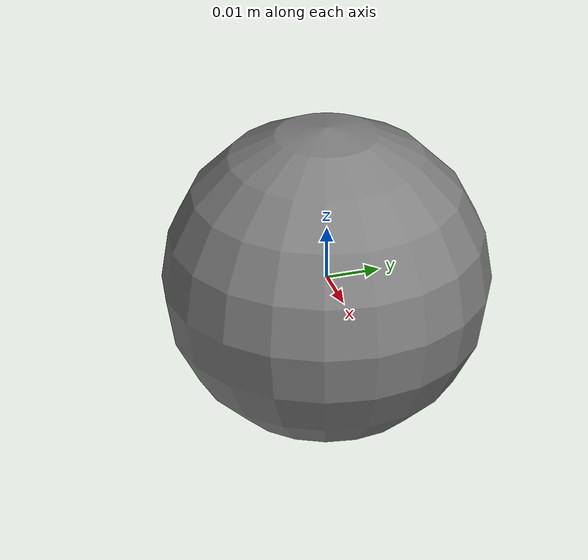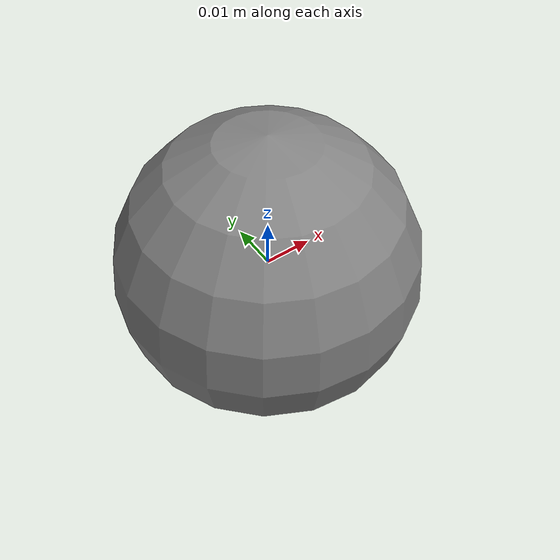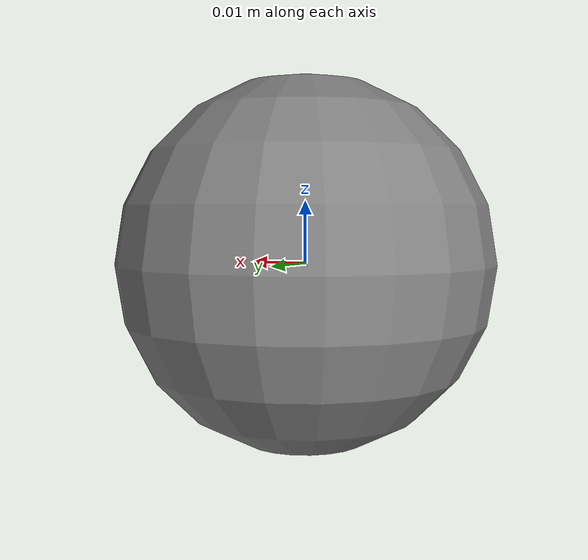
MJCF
<mujoco model="base">
    <compiler coordinate="local" angle="radian" autolimits="true"
        eulerseq="xyz" boundmass="1e-5" boundinertia="1e-11"/>

    <statistic center="0 0 0"/>

    <option cone="elliptic" noslip_iterations="5" noslip_tolerance="0"
            iterations="100" timestep="0.002"
            impratio="10" tolerance="1e-10">
    </option>

    <worldbody>
        <body name="mocap" mocap="true" pos="0 0 0">
            <geom conaffinity="0" contype="0" pos="0 0 0"
                  size=".03" type="sphere"/>
            <site pos="0 0 0" size=".03" type="sphere"/>
        </body>
    </worldbody>

    <visual>
        <map znear="0.01"/>
        <headlight active="0"/>
        <scale forcewidth="0.1" contactwidth="0.3" contactheight="0.1"
        jointwidth=".1" framewidth=".1" framelength="1."/>
    </visual>
</mujoco>
